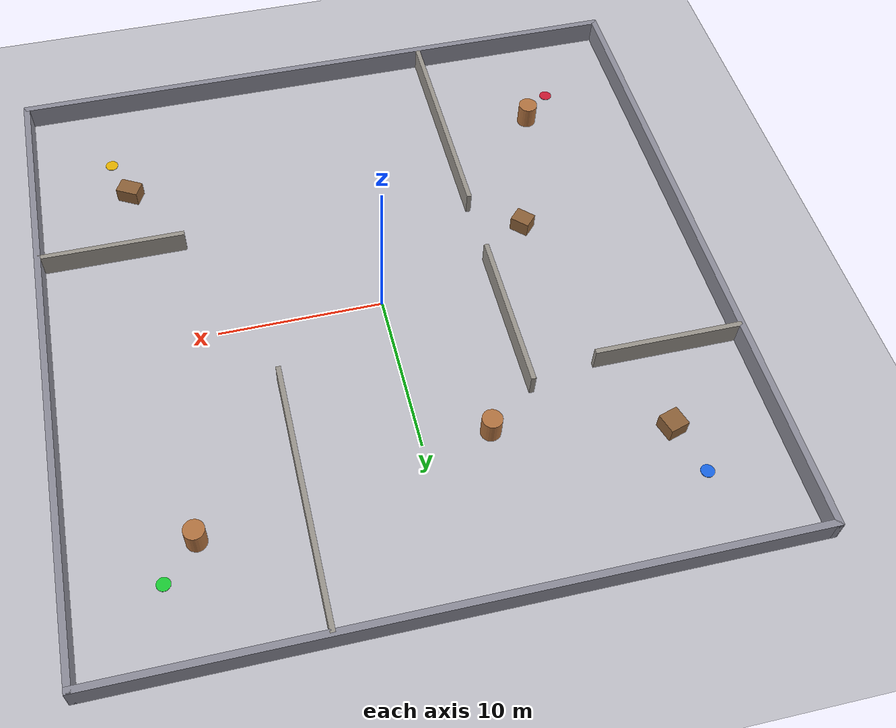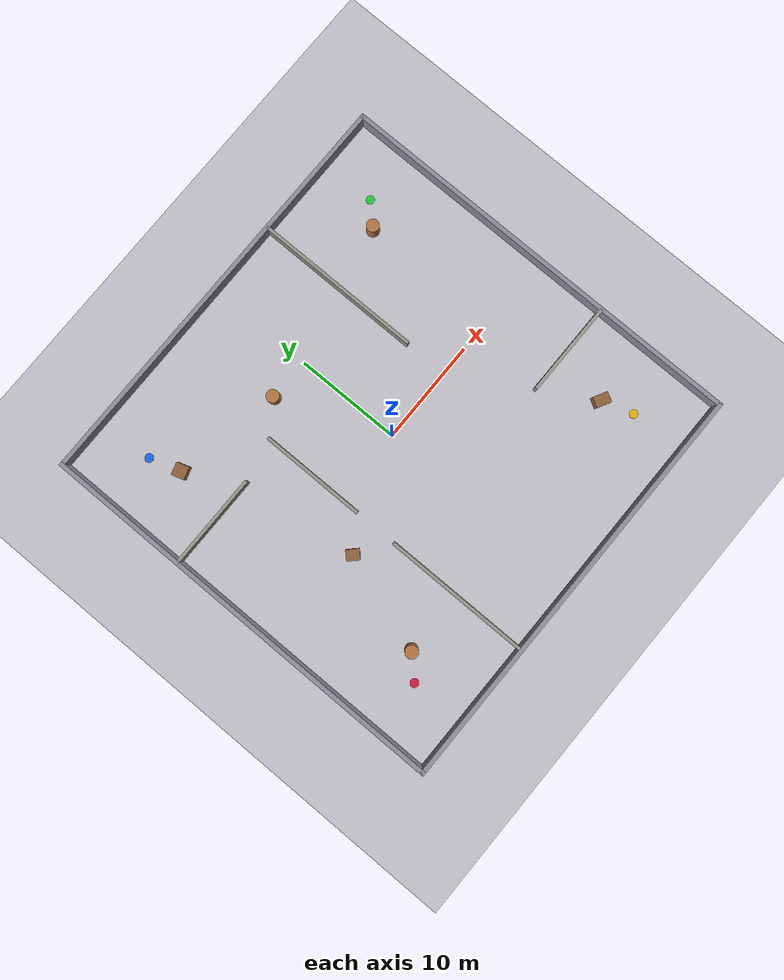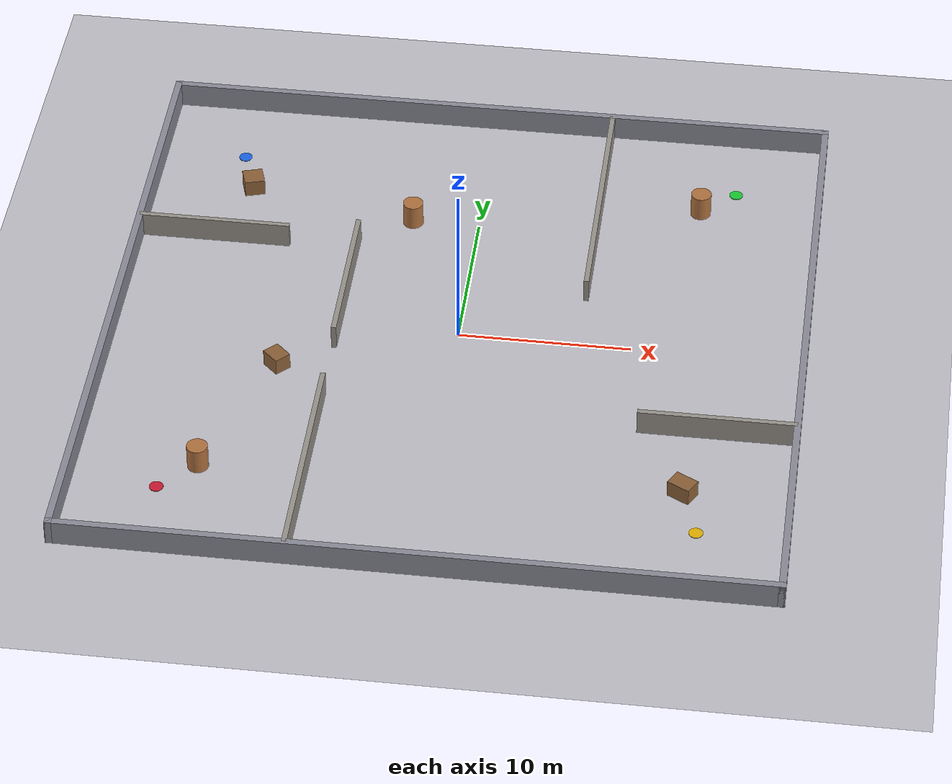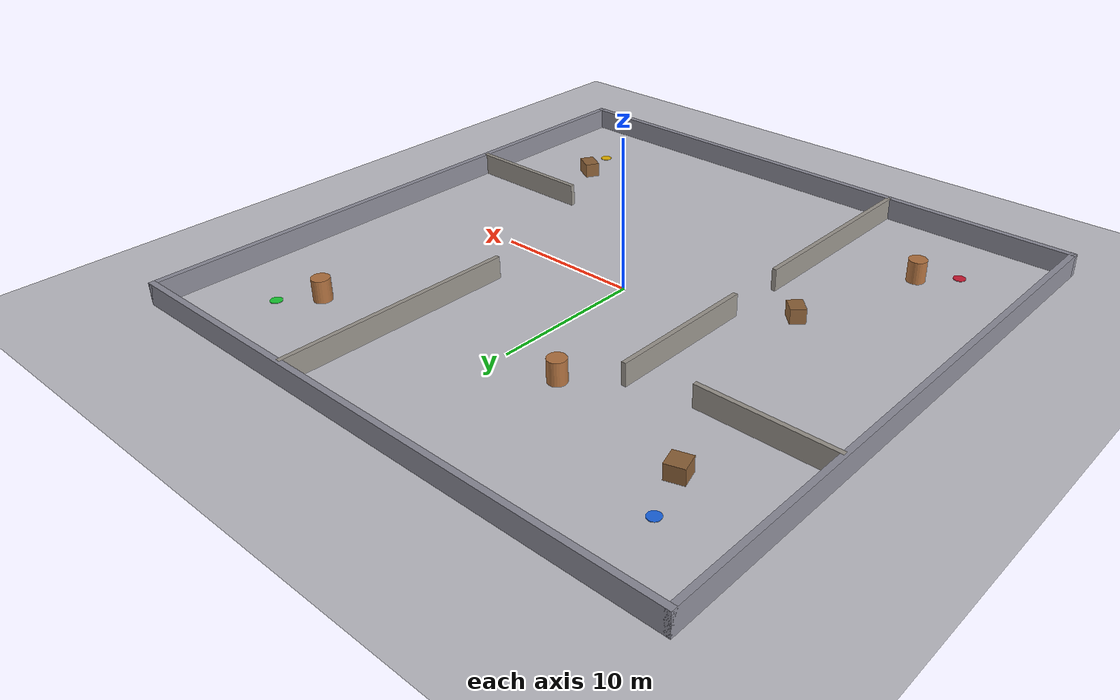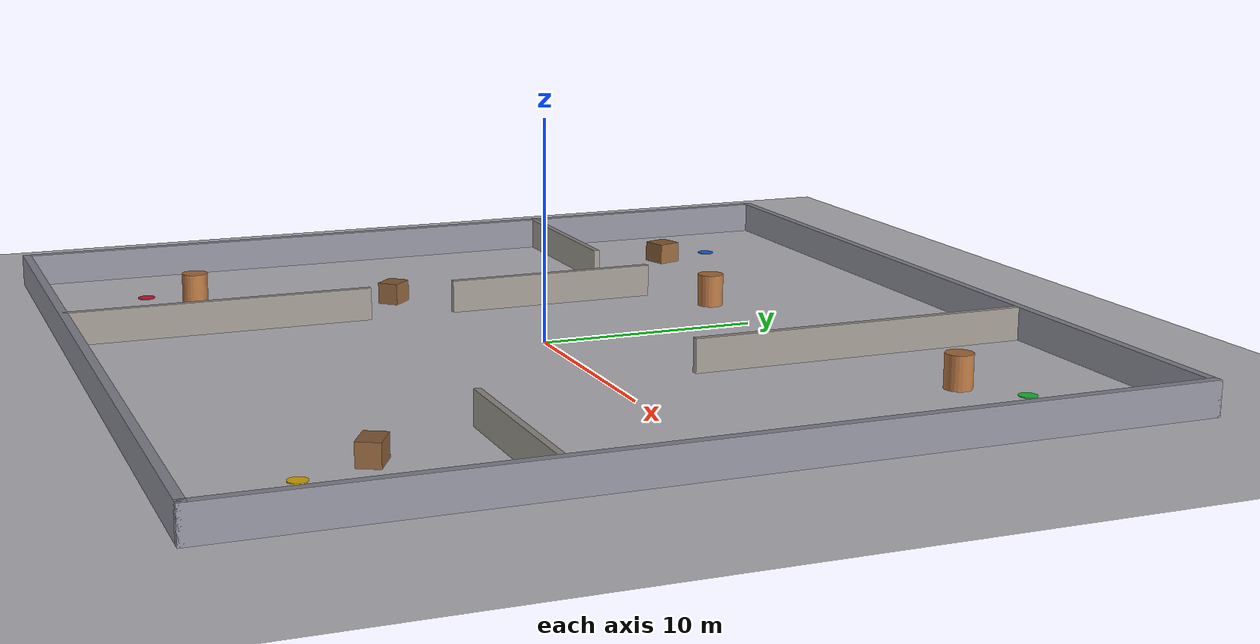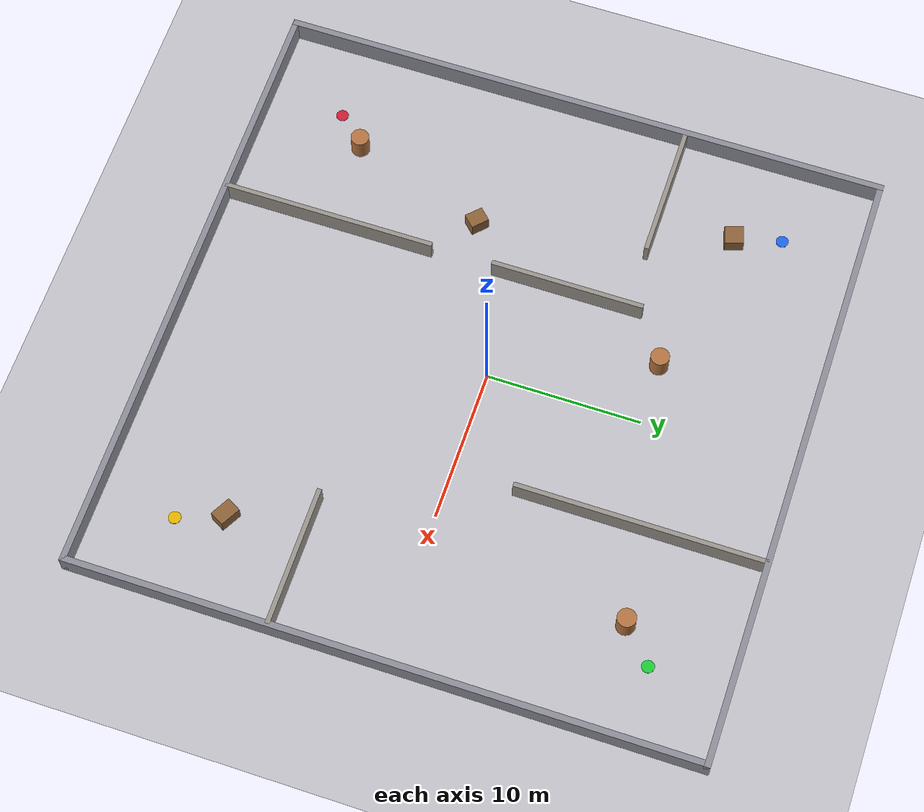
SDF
<sdf version="1.9">
 <world name="nav_world">
  <physics name="4ms" type="ode">
   <max_step_size>0.004</max_step_size>
   <real_time_factor>1.0</real_time_factor>
  </physics>
  <gravity>0 0 -9.80665</gravity>
  <magnetic_field>6e-06 2.3e-05 -4.2e-05</magnetic_field>
  <atmosphere type="adiabatic"/>
  <plugin filename="gz-sim-physics-system" name="gz::sim::systems::Physics"/>
  <plugin filename="gz-sim-user-commands-system" name="gz::sim::systems::UserCommands"/>
  <plugin filename="gz-sim-scene-broadcaster-system" name="gz::sim::systems::SceneBroadcaster"/>
  <plugin filename="gz-sim-contact-system" name="gz::sim::systems::Contact"/>
  <plugin filename="gz-sim-sensors-system" name="gz::sim::systems::Sensors">
   <render_engine>ogre2</render_engine>
  </plugin>
  <plugin filename="gz-sim-imu-system" name="gz::sim::systems::Imu"/>
  <plugin filename="gz-sim-magnetometer-system" name="gz::sim::systems::Magnetometer"/>
  <plugin filename="gz-sim-air-pressure-system" name="gz::sim::systems::AirPressure"/>
  <light type="directional" name="sun">
   <pose>0 0 10 0 0 0</pose>
   <diffuse>0.95 0.95 0.95 1</diffuse>
   <specular>0.25 0.25 0.25 1</specular>
   <attenuation>
    <range>1000</range>
    <constant>0.9</constant>
    <linear>0.01</linear>
    <quadratic>0.001</quadratic>
   </attenuation>
   <direction>-0.5 0.1 -0.9</direction>
  </light>
  <scene>
   <grid>true</grid>
   <ambient>0.4 0.4 0.4 1</ambient>
   <background>0.7 0.7 0.7 1</background>
   <shadows>true</shadows>
  </scene>
  <spherical_coordinates>
   <surface_model>EARTH_WGS84</surface_model>
   <world_frame_orientation>ENU</world_frame_orientation>
   <latitude_deg>47.397971057728974</latitude_deg>
   <longitude_deg>8.546163739800146</longitude_deg>
   <elevation>0</elevation>
  </spherical_coordinates>
  <model name="ground_plane">
   <static>true</static>
   <link name="link">
    <collision name="collision">
     <geometry><plane><normal>0 0 1</normal><size>200 200</size></plane></geometry>
    </collision>
    <visual name="visual">
     <geometry><plane><normal>0 0 1</normal><size>200 200</size></plane></geometry>
     <material><ambient>0.75 0.75 0.78 1</ambient><diffuse>0.75 0.75 0.78 1</diffuse></material>
    </visual>
   </link>
  </model>
  <model name="wall_n">
   <static>true</static>
   <pose>0 20 0.75 0 0 0</pose>
   <link name="link">
    <collision name="c"><geometry><box><size>40.4 0.4 1.5</size></box></geometry></collision>
    <visual name="v">
     <geometry><box><size>40.4 0.4 1.5</size></box></geometry>
     <material><ambient>0.55 0.55 0.60 1</ambient><diffuse>0.55 0.55 0.60 1</diffuse></material>
    </visual>
   </link>
  </model>
  <model name="wall_s">
   <static>true</static>
   <pose>0 -20 0.75 0 0 0</pose>
   <link name="link">
    <collision name="c"><geometry><box><size>40.4 0.4 1.5</size></box></geometry></collision>
    <visual name="v">
     <geometry><box><size>40.4 0.4 1.5</size></box></geometry>
     <material><ambient>0.55 0.55 0.60 1</ambient><diffuse>0.55 0.55 0.60 1</diffuse></material>
    </visual>
   </link>
  </model>
  <model name="wall_e">
   <static>true</static>
   <pose>20 0 0.75 0 0 0</pose>
   <link name="link">
    <collision name="c"><geometry><box><size>0.4 40.4 1.5</size></box></geometry></collision>
    <visual name="v">
     <geometry><box><size>0.4 40.4 1.5</size></box></geometry>
     <material><ambient>0.55 0.55 0.60 1</ambient><diffuse>0.55 0.55 0.60 1</diffuse></material>
    </visual>
   </link>
  </model>
  <model name="wall_w">
   <static>true</static>
   <pose>-20 0 0.75 0 0 0</pose>
   <link name="link">
    <collision name="c"><geometry><box><size>0.4 40.4 1.5</size></box></geometry></collision>
    <visual name="v">
     <geometry><box><size>0.4 40.4 1.5</size></box></geometry>
     <material><ambient>0.55 0.55 0.60 1</ambient><diffuse>0.55 0.55 0.60 1</diffuse></material>
    </visual>
   </link>
  </model>
  <model name="wall_i1a">
   <static>true</static>
   <pose>-7.0 -13.0 0.75 0 0 0</pose>
   <link name="link">
    <collision name="c"><geometry><box><size>0.3 14.0 1.5</size></box></geometry></collision>
    <visual name="v">
     <geometry><box><size>0.3 14.0 1.5</size></box></geometry>
     <material><ambient>0.60 0.58 0.55 1</ambient><diffuse>0.60 0.58 0.55 1</diffuse></material>
    </visual>
   </link>
  </model>
  <model name="wall_i1b">
   <static>true</static>
   <pose>-7.0 3.0 0.75 0 0 0</pose>
   <link name="link">
    <collision name="c"><geometry><box><size>0.3 10.0 1.5</size></box></geometry></collision>
    <visual name="v">
     <geometry><box><size>0.3 10.0 1.5</size></box></geometry>
     <material><ambient>0.60 0.58 0.55 1</ambient><diffuse>0.60 0.58 0.55 1</diffuse></material>
    </visual>
   </link>
  </model>
  <model name="wall_i2">
   <static>true</static>
   <pose>7.0 12.0 0.75 0 0 0</pose>
   <link name="link">
    <collision name="c"><geometry><box><size>0.3 16.0 1.5</size></box></geometry></collision>
    <visual name="v">
     <geometry><box><size>0.3 16.0 1.5</size></box></geometry>
     <material><ambient>0.60 0.58 0.55 1</ambient><diffuse>0.60 0.58 0.55 1</diffuse></material>
    </visual>
   </link>
  </model>
  <model name="wall_i3">
   <static>true</static>
   <pose>-15.5 7.0 0.75 0 0 0</pose>
   <link name="link">
    <collision name="c"><geometry><box><size>9.0 0.3 1.5</size></box></geometry></collision>
    <visual name="v">
     <geometry><box><size>9.0 0.3 1.5</size></box></geometry>
     <material><ambient>0.60 0.58 0.55 1</ambient><diffuse>0.60 0.58 0.55 1</diffuse></material>
    </visual>
   </link>
  </model>
  <model name="wall_i4">
   <static>true</static>
   <pose>15.5 -7.0 0.75 0 0 0</pose>
   <link name="link">
    <collision name="c"><geometry><box><size>9.0 0.3 1.5</size></box></geometry></collision>
    <visual name="v">
     <geometry><box><size>9.0 0.3 1.5</size></box></geometry>
     <material><ambient>0.60 0.58 0.55 1</ambient><diffuse>0.60 0.58 0.55 1</diffuse></material>
    </visual>
   </link>
  </model>
  <model name="pillar_a">
   <static>true</static>
   <pose>-13.0 -13.0 0.75 0 0 0</pose>
   <link name="link">
    <collision name="c">
     <geometry><cylinder><radius>0.6</radius><length>1.5</length></cylinder></geometry>
    </collision>
    <visual name="v">
     <geometry><cylinder><radius>0.6</radius><length>1.5</length></cylinder></geometry>
     <material><ambient>0.70 0.45 0.25 1</ambient><diffuse>0.70 0.45 0.25 1</diffuse></material>
    </visual>
   </link>
  </model>
  <model name="pillar_b">
   <static>true</static>
   <pose>13.0 13.0 0.75 0 0 0</pose>
   <link name="link">
    <collision name="c">
     <geometry><cylinder><radius>0.6</radius><length>1.5</length></cylinder></geometry>
    </collision>
    <visual name="v">
     <geometry><cylinder><radius>0.6</radius><length>1.5</length></cylinder></geometry>
     <material><ambient>0.70 0.45 0.25 1</ambient><diffuse>0.70 0.45 0.25 1</diffuse></material>
    </visual>
   </link>
  </model>
  <model name="pillar_c">
   <static>true</static>
   <pose>-4.0 10.0 0.75 0 0 0</pose>
   <link name="link">
    <collision name="c">
     <geometry><cylinder><radius>0.6</radius><length>1.5</length></cylinder></geometry>
    </collision>
    <visual name="v">
     <geometry><cylinder><radius>0.6</radius><length>1.5</length></cylinder></geometry>
     <material><ambient>0.70 0.45 0.25 1</ambient><diffuse>0.70 0.45 0.25 1</diffuse></material>
    </visual>
   </link>
  </model>
  <model name="crate_1">
   <static>true</static>
   <pose>-14.0 12.0 0.5 0 0 0.3</pose>
   <link name="link">
    <collision name="c"><geometry><box><size>1.2 1.2 1.0</size></box></geometry></collision>
    <visual name="v">
     <geometry><box><size>1.2 1.2 1.0</size></box></geometry>
     <material><ambient>0.55 0.38 0.22 1</ambient><diffuse>0.55 0.38 0.22 1</diffuse></material>
    </visual>
   </link>
  </model>
  <model name="crate_2">
   <static>true</static>
   <pose>14.0 -12.0 0.5 0 0 -0.5</pose>
   <link name="link">
    <collision name="c"><geometry><box><size>1.4 1.0 1.0</size></box></geometry></collision>
    <visual name="v">
     <geometry><box><size>1.4 1.0 1.0</size></box></geometry>
     <material><ambient>0.55 0.38 0.22 1</ambient><diffuse>0.55 0.38 0.22 1</diffuse></material>
    </visual>
   </link>
  </model>
  <model name="crate_3">
   <static>true</static>
   <pose>-10.0 -4.0 0.5 0 0 0.8</pose>
   <link name="link">
    <collision name="c"><geometry><box><size>1.0 1.2 1.0</size></box></geometry></collision>
    <visual name="v">
     <geometry><box><size>1.0 1.2 1.0</size></box></geometry>
     <material><ambient>0.55 0.38 0.22 1</ambient><diffuse>0.55 0.38 0.22 1</diffuse></material>
    </visual>
   </link>
  </model>
  <model name="goal_marker_A">
   <static>true</static>
   <pose>15.0 15.0 0.02 0 0 0</pose>
   <link name="link">
    <visual name="v">
     <geometry><cylinder><radius>0.4</radius><length>0.04</length></cylinder></geometry>
     <material><ambient>0.1 0.8 0.2 1</ambient><diffuse>0.1 0.8 0.2 1</diffuse></material>
    </visual>
   </link>
  </model>
  <model name="goal_marker_B">
   <static>true</static>
   <pose>-15.0 -15.0 0.02 0 0 0</pose>
   <link name="link">
    <visual name="v">
     <geometry><cylinder><radius>0.4</radius><length>0.04</length></cylinder></geometry>
     <material><ambient>0.8 0.1 0.2 1</ambient><diffuse>0.8 0.1 0.2 1</diffuse></material>
    </visual>
   </link>
  </model>
  <model name="goal_marker_C">
   <static>true</static>
   <pose>-15.0 15.0 0.02 0 0 0</pose>
   <link name="link">
    <visual name="v">
     <geometry><cylinder><radius>0.4</radius><length>0.04</length></cylinder></geometry>
     <material><ambient>0.1 0.4 0.9 1</ambient><diffuse>0.1 0.4 0.9 1</diffuse></material>
    </visual>
   </link>
  </model>
  <model name="goal_marker_D">
   <static>true</static>
   <pose>15.0 -15.0 0.02 0 0 0</pose>
   <link name="link">
    <visual name="v">
     <geometry><cylinder><radius>0.4</radius><length>0.04</length></cylinder></geometry>
     <material><ambient>0.9 0.7 0.0 1</ambient><diffuse>0.9 0.7 0.0 1</diffuse></material>
    </visual>
   </link>
  </model>
 </world>
</sdf>
